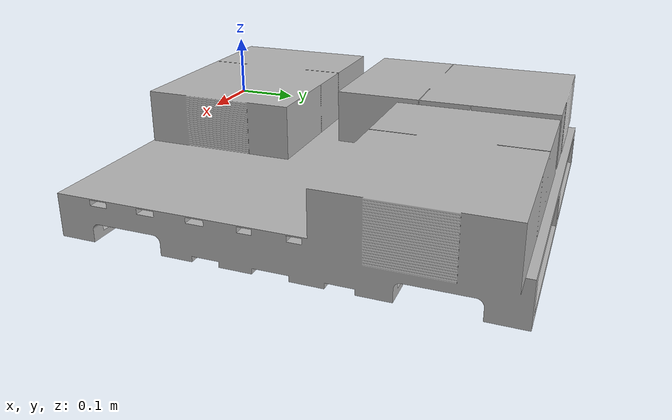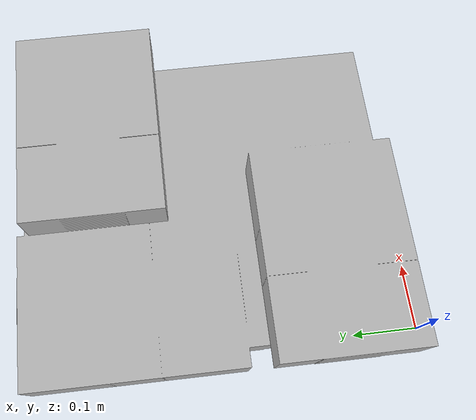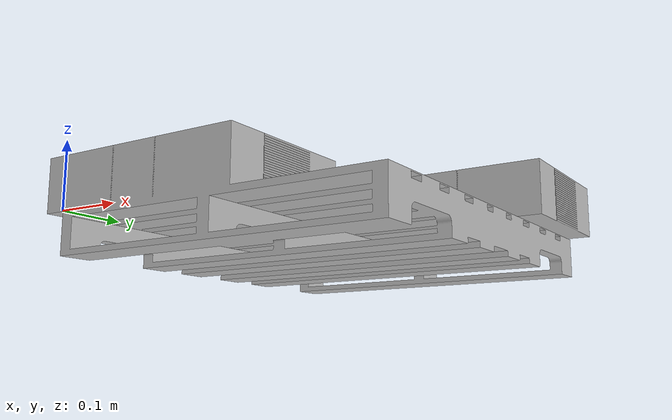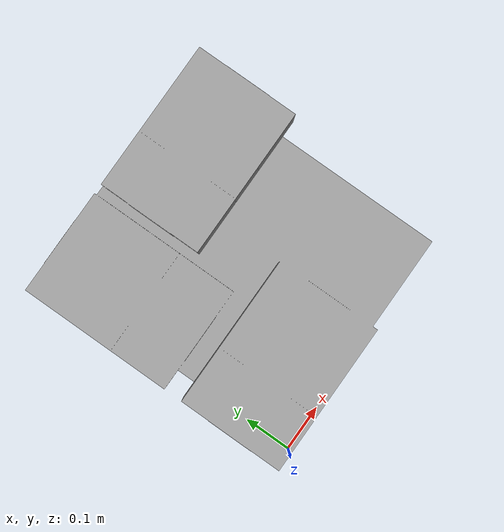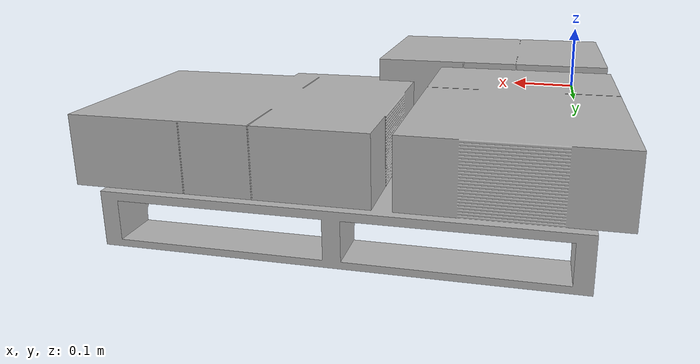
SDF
<?xml version="1.0" ?>
<sdf version="1.5">
  <model name="skid_flat_stacked_boxes">
    <static>true</static>
    <link name="skid_flat_stacked_boxes_link">
        <collision name="skid_flat_stacked_boxes_collision">
         <geometry>
            <mesh>
                <uri>model://skid_flat_stacked_boxes/meshes/model.dae</uri>
                <scale>0.5 0.5 0.5</scale>
            </mesh>
        </geometry>
      </collision>

      <visual name="skid_flat_stacked_boxes_mesh">
        <cast_shadows>true</cast_shadows>
        <geometry>
            <mesh>
                <uri>model://skid_flat_stacked_boxes/meshes/model.dae</uri>
                <scale>0.5 0.5 0.5</scale>
            </mesh>
        </geometry>
      </visual>
    </link>
  </model>
</sdf>
